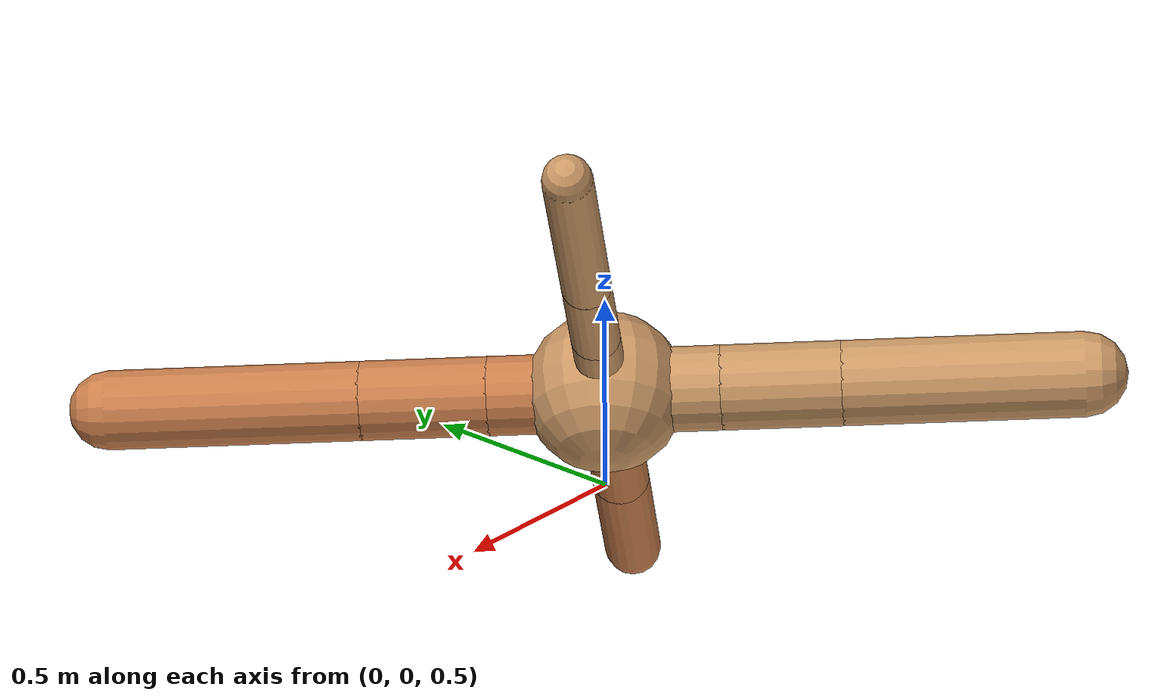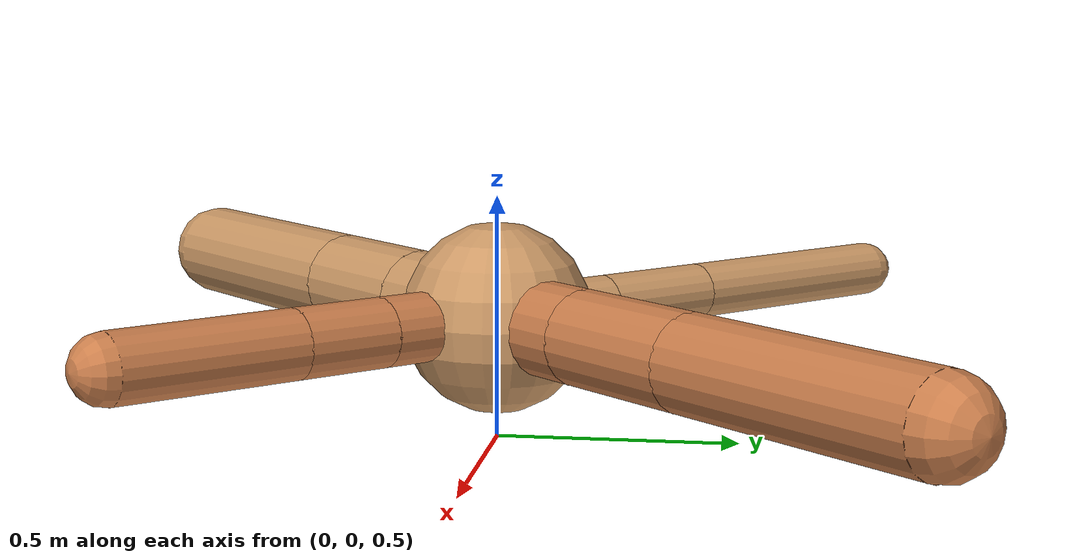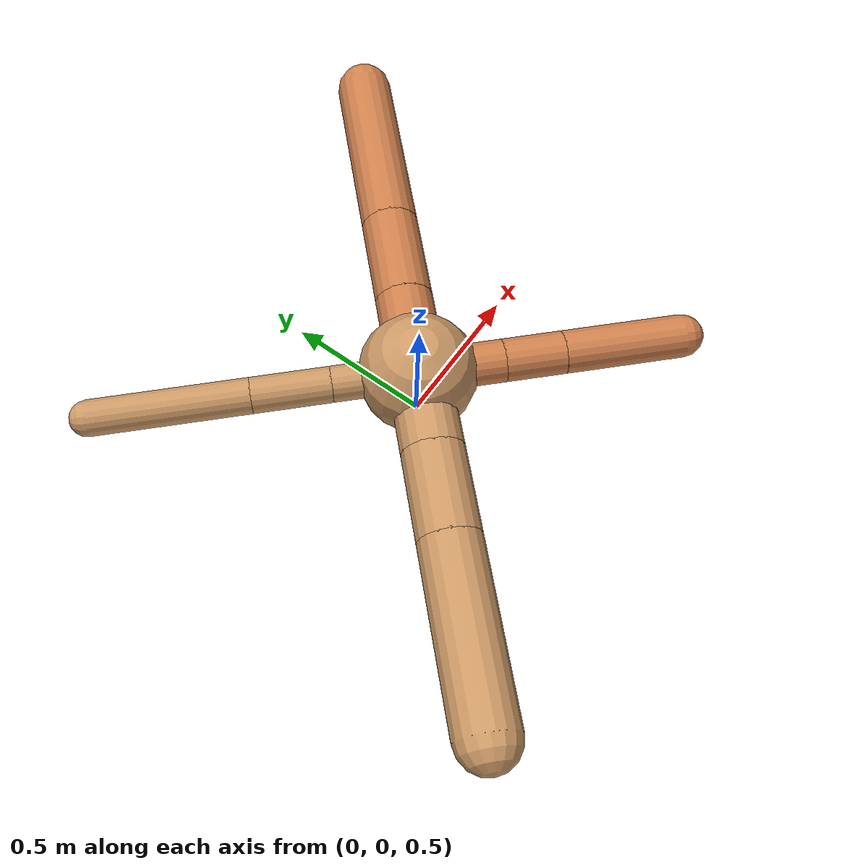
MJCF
<?xml version="1.0" ?>
<mujoco model="ant">

	<compiler angle="degree" coordinate="local" inertiafromgeom="true"/>

	<option integrator="RK4" timestep="0.01"/>

	<custom>

		<numeric data="0.0 0.0 0.55 1.0 0.0 0.0 0.0 0.0 1.0 0.0 -1.0 0.0 -1.0 0.0 1.0" name="init_qpos"/>

	</custom>

	<default>

		<joint armature="1" damping="1" limited="true"/>

		<geom conaffinity="0" condim="3" density="5.0" friction="1.5 0.1 0.1" margin="0.01" rgba="0.8 0.6 0.4 1"/>

	</default>

	<worldbody>

		<body name="torso" pos="0 0 0.75">

			<geom name="torso_geom" pos="0 0 0" size="0.19710832030398376" type="sphere"/>

			<!--joint armature="0" damping="0" limited="false" margin="0.01" name="root" pos="0 0 0" type="free"/-->

			<body name="front_left_leg" pos="0 0 0">

				<geom fromto="0 0 0 0.2 0.2 0" name="aux_1_geom" size="0.09689882070477396" type="capsule" rgba=".8 .5 .3 1"/>

				<body name="aux_1" pos="0.2 0.2 0">

					<joint axis="0 0 1" name="hip_1" pos="0.0 0.0 0.0" range="-40 40" type="hinge"/>

					<geom fromto="0 0 0 0.21982470453854652 0.21982470453854652 0" name="left_leg_geom" size="0.09689882070477396" type="capsule" rgba=".8 .5 .3 1"/>

					<body pos="0.21982470453854652 0.21982470453854652 0" name="front_left_foot">

						<joint axis="-1 1 0" name="ankle_1" pos="0.0 0.0 0.0" range="30 100" type="hinge"/>

						<geom fromto="0 0 0 0.43964940907709305 0.43964940907709305 0" name="left_ankle_geom" size="0.09689882070477396" type="capsule" rgba=".8 .5 .3 1"/>

					</body>

				</body>

			</body>

			<body name="front_right_leg" pos="0 0 0">

				<geom fromto="0 0 0 -0.2 0.2 0" name="aux_2_geom" size="0.05933024964965831" type="capsule"/>

				<body name="aux_2" pos="-0.2 0.2 0">

					<joint axis="0 0 1" name="hip_2" pos="0.0 0.0 0.0" range="-40 40" type="hinge"/>

					<geom fromto="0 0 0 -0.18432762433617067 0.18432762433617067 0" name="right_leg_geom" size="0.05933024964965831" type="capsule"/>

					<body pos="-0.18432762433617067 0.18432762433617067 0" name="front_right_foot">

						<joint axis="1 1 0" name="ankle_2" pos="0.0 0.0 0.0" range="-100 -30" type="hinge"/>

						<geom fromto="0 0 0 -0.36865524867234134 0.36865524867234134 0" name="right_ankle_geom" size="0.05933024964965831" type="capsule"/>

					</body>

				</body>

			</body>

			<body name="left_back_leg" pos="0 0 0">

				<geom fromto="0 0 0 -0.2 -0.2 0" name="aux_3_geom" size="0.10362789425897159" type="capsule"/>

				<body name="aux_3" pos="-0.2 -0.2 0">

					<joint axis="0 0 1" name="hip_3" pos="0.0 0.0 0.0" range="-40 40" type="hinge"/>

					<geom fromto="0 0 0 -0.20699334453344942 -0.20699334453344942 0" name="back_leg_geom" size="0.10362789425897159" type="capsule"/>

					<body pos="-0.20699334453344942 -0.20699334453344942 0" name="left_back_foot">

						<joint axis="-1 1 0" name="ankle_3" pos="0.0 0.0 0.0" range="-100 -30" type="hinge"/>

						<geom fromto="0 0 0 -0.41398668906689884 -0.41398668906689884 0" name="third_ankle_geom" size="0.10362789425897159" type="capsule"/>

					</body>

				</body>

			</body>

			<body name="right_back_leg" pos="0 0 0">

				<geom fromto="0 0 0 0.2 -0.2 0" name="aux_4_geom" size="0.07085723651157252" type="capsule" rgba=".8 .5 .3 1"/>

				<body name="aux_4" pos="0.2 -0.2 0">

					<joint axis="0 0 1" name="hip_4" pos="0.0 0.0 0.0" range="-40 40" type="hinge"/>

					<geom fromto="0 0 0 0.14139591425144463 -0.14139591425144463 0" name="rightback_leg_geom" size="0.07085723651157252" type="capsule" rgba=".8 .5 .3 1"/>

					<body pos="0.14139591425144463 -0.14139591425144463 0" name="right_back_foot">

						<joint axis="1 1 0" name="ankle_4" pos="0.0 0.0 0.0" range="30 100" type="hinge"/>

						<geom fromto="0 0 0 0.28279182850288925 -0.28279182850288925 0" name="fourth_ankle_geom" size="0.07085723651157252" type="capsule" rgba=".8 .5 .3 1"/>

					</body>

				</body>

			</body>

		</body>

	</worldbody>

	<actuator>

		<motor ctrllimited="true" ctrlrange="-1.0 1.0" joint="hip_4" gear="150"/>

		<motor ctrllimited="true" ctrlrange="-1.0 1.0" joint="ankle_4" gear="150"/>

		<motor ctrllimited="true" ctrlrange="-1.0 1.0" joint="hip_1" gear="150"/>

		<motor ctrllimited="true" ctrlrange="-1.0 1.0" joint="ankle_1" gear="150"/>

		<motor ctrllimited="true" ctrlrange="-1.0 1.0" joint="hip_2" gear="150"/>

		<motor ctrllimited="true" ctrlrange="-1.0 1.0" joint="ankle_2" gear="150"/>

		<motor ctrllimited="true" ctrlrange="-1.0 1.0" joint="hip_3" gear="150"/>

		<motor ctrllimited="true" ctrlrange="-1.0 1.0" joint="ankle_3" gear="150"/>

	</actuator>

</mujoco>
